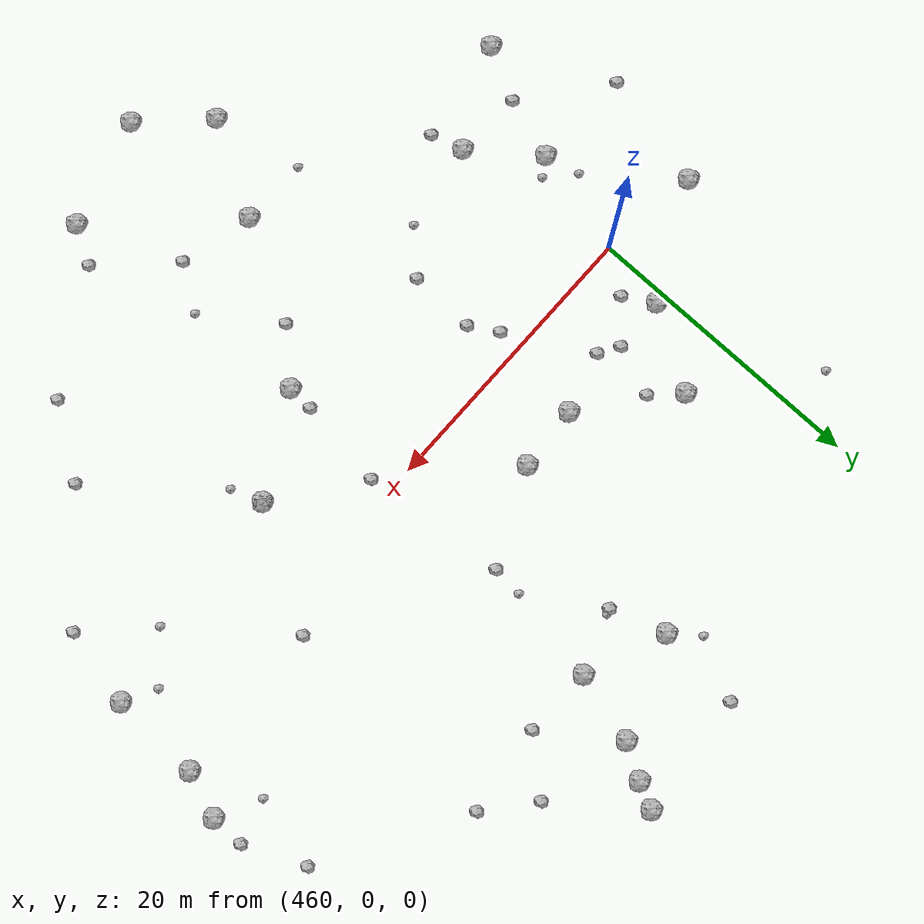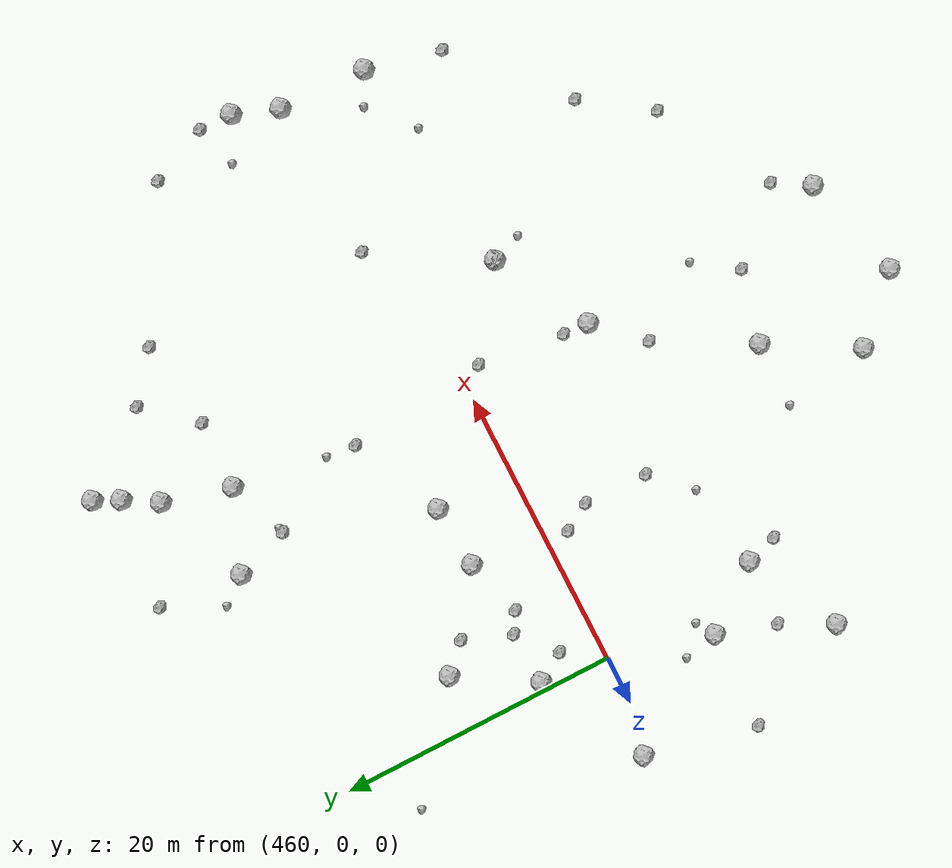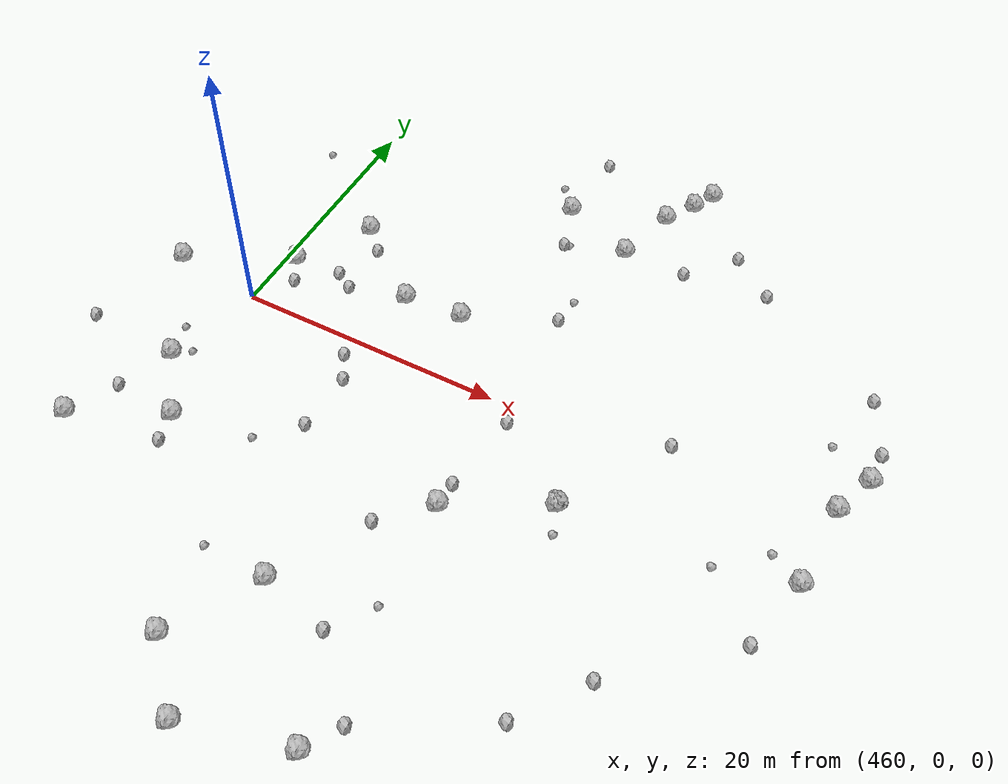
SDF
<sdf version="1.6">
 <world name="default">
  <include><uri>model://sun</uri></include>
  <model name="rock1_12_4">
   <include><uri>model://rock1</uri><pose>476.76711177980457 19.63096105596844 0.5 0 0 0</pose></include>
  </model>
  <model name="rock1_12_5">
   <include><uri>model://rock1</uri><pose>453.0692391126634 0.8527198752653966 0.5 0 0 0</pose></include>
  </model>
  <model name="rock1_12_6">
   <include><uri>model://rock1</uri><pose>464.02762683422617 10.170348019190662 0.5 0 0 0</pose></include>
  </model>
  <model name="rock1_12_7">
   <include><uri>model://rock1</uri><pose>474.8815153822069 -29.443700746621676 0.5 0 0 0</pose></include>
  </model>
  <model name="rock1_12_8">
   <include><uri>model://rock1</uri><pose>470.09020688729237 5.289922172063626 0.5 0 0 0</pose></include>
  </model>
  <model name="rock1_12_9">
   <include><uri>model://rock1</uri><pose>487.86659278127684 -5.7102288391581055 0.5 0 0 0</pose></include>
  </model>
  <model name="rock1_12_10">
   <include><uri>model://rock1</uri><pose>460.7651801694068 4.774068033061283 0.5 0 0 0</pose></include>
  </model>
  <model name="rock1_12_11">
   <include><uri>model://rock1</uri><pose>458.180762823154 -7.301973463998479 0.5 0 0 0</pose></include>
  </model>
  <model name="rock1_12_12">
   <include><uri>model://rock1</uri><pose>482.3543641687114 17.375482948363548 0.5 0 0 0</pose></include>
  </model>
  <model name="rock1_12_13">
   <include><uri>model://rock1</uri><pose>470.88897918762007 -25.35895961262616 0.5 0 0 0</pose></include>
  </model>
  <model name="rock1_12_14">
   <include><uri>model://rock1</uri><pose>483.6916557112603 22.247629498813545 0.5 0 0 0</pose></include>
  </model>
  <model name="rock1_12_15">
   <include><uri>model://rock1</uri><pose>503.59807993425443 -3.7453128298928853 0.5 0 0 0</pose></include>
  </model>
  <model name="rock1_12_16">
   <include><uri>model://rock1</uri><pose>482.36898717789313 -27.40381406633096 0.5 0 0 0</pose></include>
  </model>
  <model name="rock1_12_17">
   <include><uri>model://rock1</uri><pose>481.1005014271725 -9.397551568724896 0.5 0 0 0</pose></include>
  </model>
  <model name="rock1_12_18">
   <include><uri>model://rock1</uri><pose>503.8801812795537 2.5601469673632806 0.5 0 0 0</pose></include>
  </model>
  <model name="rock1_12_19">
   <include><uri>model://rock1</uri><pose>485.07691635741384 24.57894468149378 0.5 0 0 0</pose></include>
  </model>
  <model name="rock1_12_20">
   <include><uri>model://rock1</uri><pose>505.07148494250197 5.744920986469246 0.5 0 0 0</pose></include>
  </model>
  <model name="rock1_12_21">
   <include><uri>model://rock1</uri><pose>474.41860288412414 -19.163585469880033 0.5 0 0 0</pose></include>
  </model>
  <model name="rock1_12_22">
   <include><uri>model://rock1</uri><pose>485.95186898542204 26.356228248943424 0.5 0 0 0</pose></include>
  </model>
  <model name="rock1_12_23">
   <include><uri>model://rock1</uri><pose>461.53245212636585 -11.70275183103244 0.5 0 0 0</pose></include>
  </model>
  <model name="rock1_12_24">
   <include><uri>model://rock1</uri><pose>487.87213941460675 -5.693116669845484 0.5 0 0 0</pose></include>
  </model>
  <model name="rock1_12_25">
   <include><uri>model://rock1</uri><pose>474.54280264587584 5.594834738135944 0.5 0 0 0</pose></include>
  </model>
  <model name="rock1_12_26">
   <include><uri>model://rock1</uri><pose>454.9766528232186 -15.025621006163083 0.5 0 0 0</pose></include>
  </model>
  <model name="rock2_12_0">
   <include><uri>model://rock2</uri><pose>477.977321960538 15.827063564846839 0.3 0 0 0</pose></include>
  </model>
  <model name="rock2_12_1">
   <include><uri>model://rock2</uri><pose>495.13392398301255 -15.666729571781534 0.3 0 0 0</pose></include>
  </model>
  <model name="rock2_12_2">
   <include><uri>model://rock2</uri><pose>462.13843066372135 -13.926281084510691 0.3 0 0 0</pose></include>
  </model>
  <model name="rock2_12_3">
   <include><uri>model://rock2</uri><pose>470.19533833149103 -3.546989347462258 0.3 0 0 0</pose></include>
  </model>
  <model name="rock2_12_4">
   <include><uri>model://rock2</uri><pose>465.87632929599215 4.106468792096919 0.3 0 0 0</pose></include>
  </model>
  <model name="rock2_12_5">
   <include><uri>model://rock2</uri><pose>477.2937593549121 25.668402178396114 0.3 0 0 0</pose></include>
  </model>
  <model name="rock2_12_6">
   <include><uri>model://rock2</uri><pose>490.23416159030336 20.752039945541163 0.3 0 0 0</pose></include>
  </model>
  <model name="rock2_12_7">
   <include><uri>model://rock2</uri><pose>502.33560338960376 -9.133920700482932 0.3 0 0 0</pose></include>
  </model>
  <model name="rock2_12_8">
   <include><uri>model://rock2</uri><pose>469.05656175742234 -1.6090460085229878 0.3 0 0 0</pose></include>
  </model>
  <model name="rock2_12_9">
   <include><uri>model://rock2</uri><pose>464.47812967187764 4.96636954169108 0.3 0 0 0</pose></include>
  </model>
  <model name="rock2_12_10">
   <include><uri>model://rock2</uri><pose>470.04679940541547 -8.12480267380987 0.3 0 0 0</pose></include>
  </model>
  <model name="rock2_12_11">
   <include><uri>model://rock2</uri><pose>451.1767178258861 -7.070052602105857 0.3 0 0 0</pose></include>
  </model>
  <model name="rock2_12_12">
   <include><uri>model://rock2</uri><pose>482.0050805893636 -1.4069639857610667 0.3 0 0 0</pose></include>
  </model>
  <model name="rock2_12_13">
   <include><uri>model://rock2</uri><pose>479.5219060288753 -20.462174615028747 0.3 0 0 0</pose></include>
  </model>
  <model name="rock2_12_14">
   <include><uri>model://rock2</uri><pose>503.31953121442046 12.324975090846308 0.3 0 0 0</pose></include>
  </model>
  <model name="rock2_12_15">
   <include><uri>model://rock2</uri><pose>465.7898532548648 8.37422767446622 0.3 0 0 0</pose></include>
  </model>
  <model name="rock2_12_16">
   <include><uri>model://rock2</uri><pose>483.8672370392993 -24.935856342726094 0.3 0 0 0</pose></include>
  </model>
  <model name="rock2_12_17">
   <include><uri>model://rock2</uri><pose>493.4783823369655 18.09076126116983 0.3 0 0 0</pose></include>
  </model>
  <model name="rock2_12_18">
   <include><uri>model://rock2</uri><pose>491.8342277461239 -20.327055816617495 0.3 0 0 0</pose></include>
  </model>
  <model name="rock2_12_19">
   <include><uri>model://rock2</uri><pose>481.1880255631506 -7.564327330127874 0.3 0 0 0</pose></include>
  </model>
  <model name="rock2_12_20">
   <include><uri>model://rock2</uri><pose>487.19809849962894 17.288681677666425 0.3 0 0 0</pose></include>
  </model>
  <model name="rock2_12_21">
   <include><uri>model://rock2</uri><pose>478.0631162453731 -12.551203721717531 0.3 0 0 0</pose></include>
  </model>
  <model name="rock2_12_22">
   <include><uri>model://rock2</uri><pose>456.7695767904487 -11.447783743240333 0.3 0 0 0</pose></include>
  </model>
  <model name="rock2_12_23">
   <include><uri>model://rock2</uri><pose>461.92998866488176 2.738857285416337 0.3 0 0 0</pose></include>
  </model>
  <model name="rock2_12_24">
   <include><uri>model://rock2</uri><pose>480.9861217066949 8.633603259098109 0.3 0 0 0</pose></include>
  </model>
  <model name="rock2_12_25">
   <include><uri>model://rock2</uri><pose>505.12627832154254 8.152409298366706 0.3 0 0 0</pose></include>
  </model>
  <model name="rock2_12_26">
   <include><uri>model://rock2</uri><pose>492.5548672297977 2.1422821845172564 0.3 0 0 0</pose></include>
  </model>
  <model name="rock3_12_0">
   <include><uri>model://rock3</uri><pose>456.675506423596 16.08649599876224 0.2 0 0 0</pose></include>
  </model>
  <model name="rock3_12_1">
   <include><uri>model://rock3</uri><pose>459.3595536830034 -6.517280267265331 0.2 0 0 0</pose></include>
  </model>
  <model name="rock3_12_2">
   <include><uri>model://rock3</uri><pose>457.5356476771568 -4.865778762864046 0.2 0 0 0</pose></include>
  </model>
  <model name="rock3_12_3">
   <include><uri>model://rock3</uri><pose>478.3340337135465 15.908461265236433 0.2 0 0 0</pose></include>
  </model>
  <model name="rock3_12_4">
   <include><uri>model://rock3</uri><pose>498.28477510970487 -5.234348450903681 0.2 0 0 0</pose></include>
  </model>
  <model name="rock3_12_5">
   <include><uri>model://rock3</uri><pose>501.3165995979697 -2.573503463835845 0.2 0 0 0</pose></include>
  </model>
  <model name="rock3_12_6">
   <include><uri>model://rock3</uri><pose>481.5594046864873 -17.53843538479798 0.2 0 0 0</pose></include>
  </model>
  <model name="rock3_12_7">
   <include><uri>model://rock3</uri><pose>467.4670310613759 -10.741434783329844 0.2 0 0 0</pose></include>
  </model>
  <model name="rock3_12_8">
   <include><uri>model://rock3</uri><pose>491.75580759903596 -20.37490978565123 0.2 0 0 0</pose></include>
  </model>
  <model name="rock3_12_9">
   <include><uri>model://rock3</uri><pose>502.01152427759195 7.246256257655261 0.2 0 0 0</pose></include>
  </model>
  <model name="rock3_12_10">
   <include><uri>model://rock3</uri><pose>481.16902537578443 10.758598838283973 0.2 0 0 0</pose></include>
  </model>
  <model name="rock3_12_11">
   <include><uri>model://rock3</uri><pose>469.6741890221723 -19.127756841231125 0.2 0 0 0</pose></include>
  </model>
  <model name="rock3_12_12">
   <include><uri>model://rock3</uri><pose>488.6058492124152 -7.891130786886439 0.2 0 0 0</pose></include>
  </model>
  <model name="rock3_12_13">
   <include><uri>model://rock3</uri><pose>475.2207622807929 21.542984153925353 0.2 0 0 0</pose></include>
  </model>
 </world>
</sdf>
